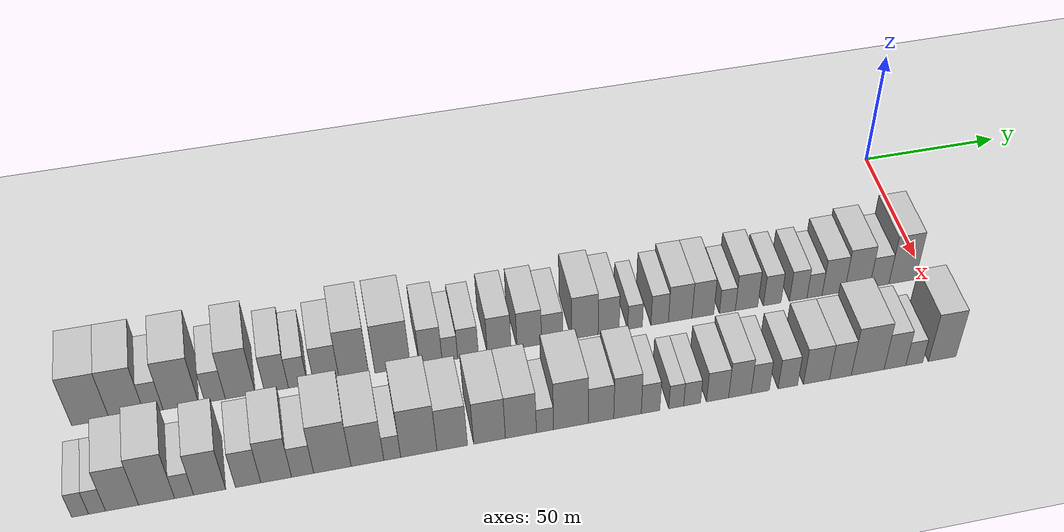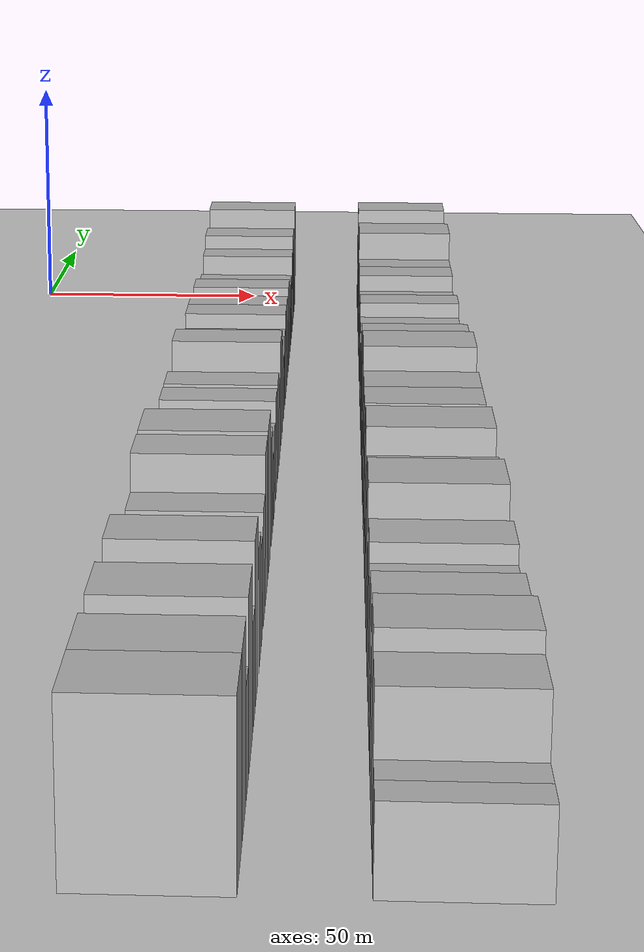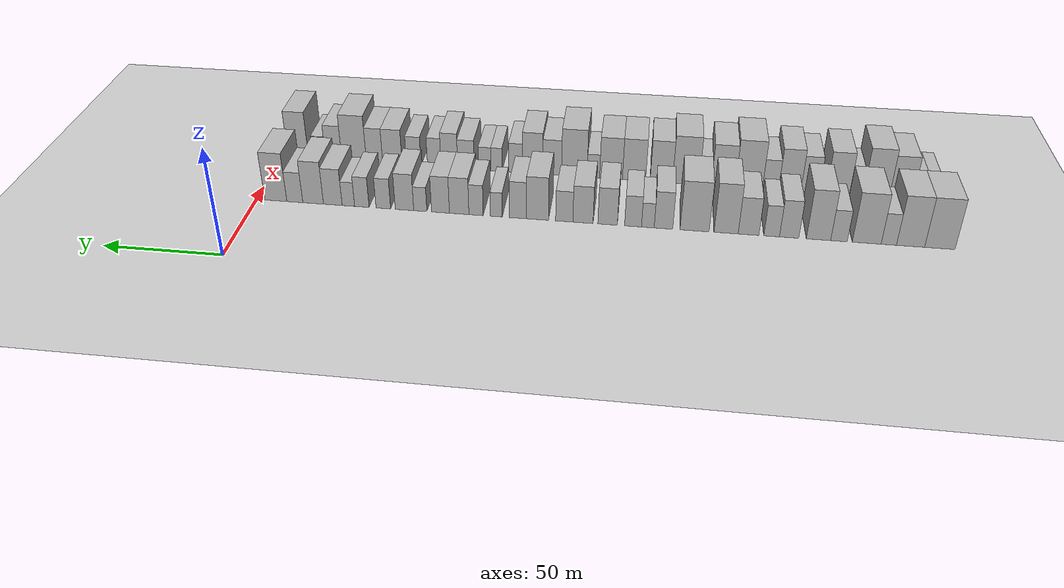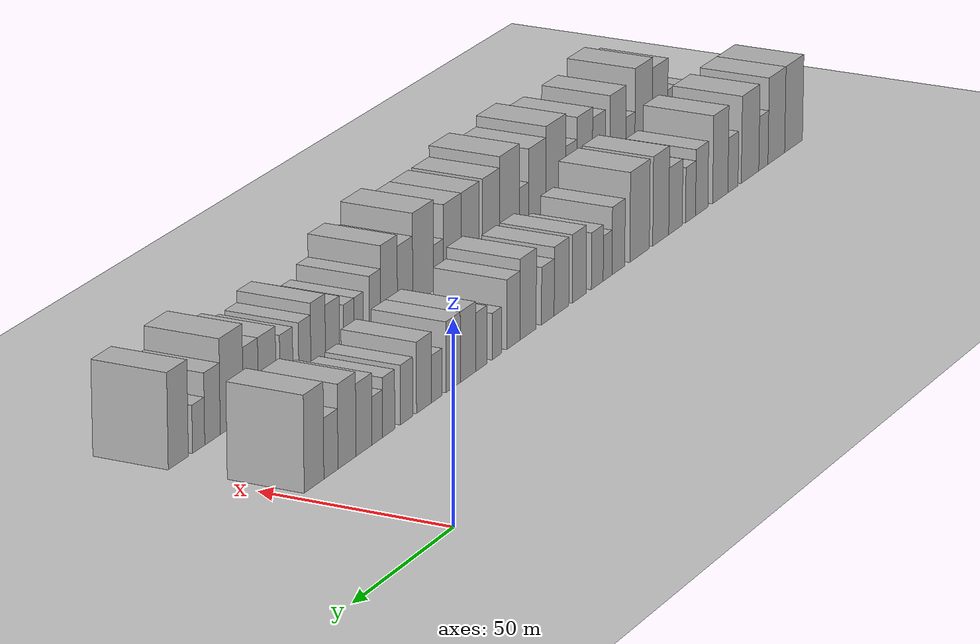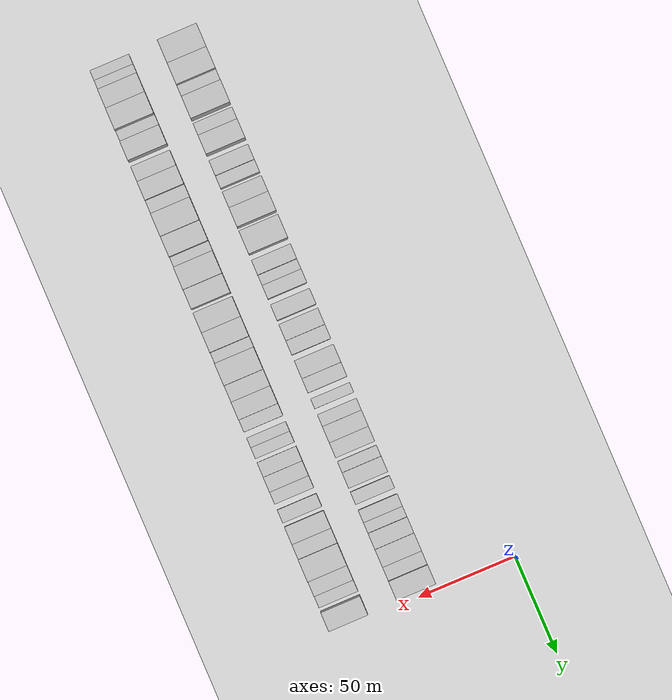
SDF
<sdf version="1.6">
 <world name="default">
  <include><name>ground_plane_1</name><uri>model://HANNAS_ground_plane</uri></include>
  <model name="building_1">
   <static>1</static>
   <pose>50.0000 -284.0708 0 0.000000 0.000000 0.000000</pose>
   <link name="link">
    <pose>0 0 12.00 0 0 0</pose>
    <collision name="collision"><geometry><box><size>20.0000 11.8585 24.0000</size></box></geometry></collision>
    <visual name="visual">
     <cast_shadows>0</cast_shadows>
     <geometry><box><size>20.0000 11.8585 24.0000</size></box></geometry>
     <material>
      <script>
       <uri>model://HANNAS_wall/materials/scripts</uri>
       <uri>model://HANNAS_wall/materials/textures</uri>
       <name>vrc/HANNAS_wall</name>
      </script>
     </material>
    </visual>
   </link>
  </model>
  <model name="building_2">
   <static>1</static>
   <pose>50.0000 -272.6437 0 0.000000 0.000000 0.000000</pose>
   <link name="link">
    <pose>0 0 12.00 0 0 0</pose>
    <collision name="collision"><geometry><box><size>20.0000 10.9956 24.0000</size></box></geometry></collision>
    <visual name="visual">
     <cast_shadows>0</cast_shadows>
     <geometry><box><size>20.0000 10.9956 24.0000</size></box></geometry>
     <material>
      <script>
       <uri>model://HANNAS_wall/materials/scripts</uri>
       <uri>model://HANNAS_wall/materials/textures</uri>
       <name>vrc/HANNAS_wall</name>
      </script>
     </material>
    </visual>
   </link>
  </model>
  <model name="building_3">
   <static>1</static>
   <pose>50.0000 -264.1438 0 0.000000 0.000000 0.000000</pose>
   <link name="link">
    <pose>0 0 7.50 0 0 0</pose>
    <collision name="collision"><geometry><box><size>20.0000 6.0041 15.0000</size></box></geometry></collision>
    <visual name="visual">
     <cast_shadows>0</cast_shadows>
     <geometry><box><size>20.0000 6.0041 15.0000</size></box></geometry>
     <material>
      <script>
       <uri>model://HANNAS_wall/materials/scripts</uri>
       <uri>model://HANNAS_wall/materials/textures</uri>
       <name>vrc/HANNAS_wall</name>
      </script>
     </material>
    </visual>
   </link>
  </model>
  <model name="building_4">
   <static>1</static>
   <pose>50.0000 -255.4517 0 0.000000 0.000000 0.000000</pose>
   <link name="link">
    <pose>0 0 12.00 0 0 0</pose>
    <collision name="collision"><geometry><box><size>20.0000 11.3802 24.0000</size></box></geometry></collision>
    <visual name="visual">
     <cast_shadows>0</cast_shadows>
     <geometry><box><size>20.0000 11.3802 24.0000</size></box></geometry>
     <material>
      <script>
       <uri>model://HANNAS_wall/materials/scripts</uri>
       <uri>model://HANNAS_wall/materials/textures</uri>
       <name>vrc/HANNAS_wall</name>
      </script>
     </material>
    </visual>
   </link>
  </model>
  <model name="building_5">
   <static>1</static>
   <pose>50.0000 -244.4778 0 0.000000 0.000000 0.000000</pose>
   <link name="link">
    <pose>0 0 7.50 0 0 0</pose>
    <collision name="collision"><geometry><box><size>20.0000 6.5676 15.0000</size></box></geometry></collision>
    <visual name="visual">
     <cast_shadows>0</cast_shadows>
     <geometry><box><size>20.0000 6.5676 15.0000</size></box></geometry>
     <material>
      <script>
       <uri>model://HANNAS_wall/materials/scripts</uri>
       <uri>model://HANNAS_wall/materials/textures</uri>
       <name>vrc/HANNAS_wall</name>
      </script>
     </material>
    </visual>
   </link>
  </model>
  <model name="building_6">
   <static>1</static>
   <pose>50.0000 -236.3527 0 0.000000 0.000000 0.000000</pose>
   <link name="link">
    <pose>0 0 12.00 0 0 0</pose>
    <collision name="collision"><geometry><box><size>20.0000 9.6825 24.0000</size></box></geometry></collision>
    <visual name="visual">
     <cast_shadows>0</cast_shadows>
     <geometry><box><size>20.0000 9.6825 24.0000</size></box></geometry>
     <material>
      <script>
       <uri>model://HANNAS_wall/materials/scripts</uri>
       <uri>model://HANNAS_wall/materials/textures</uri>
       <name>vrc/HANNAS_wall</name>
      </script>
     </material>
    </visual>
   </link>
  </model>
  <model name="building_7">
   <static>1</static>
   <pose>50.0000 -224.6390 0 0.000000 0.000000 0.000000</pose>
   <link name="link">
    <pose>0 0 9.00 0 0 0</pose>
    <collision name="collision"><geometry><box><size>20.0000 7.7450 18.0000</size></box></geometry></collision>
    <visual name="visual">
     <cast_shadows>0</cast_shadows>
     <geometry><box><size>20.0000 7.7450 18.0000</size></box></geometry>
     <material>
      <script>
       <uri>model://HANNAS_wall/materials/scripts</uri>
       <uri>model://HANNAS_wall/materials/textures</uri>
       <name>vrc/HANNAS_wall</name>
      </script>
     </material>
    </visual>
   </link>
  </model>
  <model name="building_8">
   <static>1</static>
   <pose>50.0000 -217.6239 0 0.000000 0.000000 0.000000</pose>
   <link name="link">
    <pose>0 0 7.50 0 0 0</pose>
    <collision name="collision"><geometry><box><size>20.0000 6.2851 15.0000</size></box></geometry></collision>
    <visual name="visual">
     <cast_shadows>0</cast_shadows>
     <geometry><box><size>20.0000 6.2851 15.0000</size></box></geometry>
     <material>
      <script>
       <uri>model://HANNAS_wall/materials/scripts</uri>
       <uri>model://HANNAS_wall/materials/textures</uri>
       <name>vrc/HANNAS_wall</name>
      </script>
     </material>
    </visual>
   </link>
  </model>
  <model name="building_9">
   <static>1</static>
   <pose>50.0000 -208.3122 0 0.000000 0.000000 0.000000</pose>
   <link name="link">
    <pose>0 0 9.00 0 0 0</pose>
    <collision name="collision"><geometry><box><size>20.0000 8.3385 18.0000</size></box></geometry></collision>
    <visual name="visual">
     <cast_shadows>0</cast_shadows>
     <geometry><box><size>20.0000 8.3385 18.0000</size></box></geometry>
     <material>
      <script>
       <uri>model://HANNAS_wall/materials/scripts</uri>
       <uri>model://HANNAS_wall/materials/textures</uri>
       <name>vrc/HANNAS_wall</name>
      </script>
     </material>
    </visual>
   </link>
  </model>
  <model name="building_10">
   <static>1</static>
   <pose>50.0000 -199.2481 0 0.000000 0.000000 0.000000</pose>
   <link name="link">
    <pose>0 0 12.00 0 0 0</pose>
    <collision name="collision"><geometry><box><size>20.0000 9.7897 24.0000</size></box></geometry></collision>
    <visual name="visual">
     <cast_shadows>0</cast_shadows>
     <geometry><box><size>20.0000 9.7897 24.0000</size></box></geometry>
     <material>
      <script>
       <uri>model://HANNAS_wall/materials/scripts</uri>
       <uri>model://HANNAS_wall/materials/textures</uri>
       <name>vrc/HANNAS_wall</name>
      </script>
     </material>
    </visual>
   </link>
  </model>
  <model name="building_11">
   <static>1</static>
   <pose>50.0000 -186.4286 0 0.000000 0.000000 0.000000</pose>
   <link name="link">
    <pose>0 0 12.00 0 0 0</pose>
    <collision name="collision"><geometry><box><size>20.0000 11.8492 24.0000</size></box></geometry></collision>
    <visual name="visual">
     <cast_shadows>0</cast_shadows>
     <geometry><box><size>20.0000 11.8492 24.0000</size></box></geometry>
     <material>
      <script>
       <uri>model://HANNAS_wall/materials/scripts</uri>
       <uri>model://HANNAS_wall/materials/textures</uri>
       <name>vrc/HANNAS_wall</name>
      </script>
     </material>
    </visual>
   </link>
  </model>
  <model name="building_12">
   <static>1</static>
   <pose>50.0000 -173.7091 0 0.000000 0.000000 0.000000</pose>
   <link name="link">
    <pose>0 0 9.00 0 0 0</pose>
    <collision name="collision"><geometry><box><size>20.0000 7.5898 18.0000</size></box></geometry></collision>
    <visual name="visual">
     <cast_shadows>0</cast_shadows>
     <geometry><box><size>20.0000 7.5898 18.0000</size></box></geometry>
     <material>
      <script>
       <uri>model://HANNAS_wall/materials/scripts</uri>
       <uri>model://HANNAS_wall/materials/textures</uri>
       <name>vrc/HANNAS_wall</name>
      </script>
     </material>
    </visual>
   </link>
  </model>
  <model name="building_13">
   <static>1</static>
   <pose>50.0000 -167.3021 0 0.000000 0.000000 0.000000</pose>
   <link name="link">
    <pose>0 0 6.00 0 0 0</pose>
    <collision name="collision"><geometry><box><size>20.0000 5.2240 12.0000</size></box></geometry></collision>
    <visual name="visual">
     <cast_shadows>0</cast_shadows>
     <geometry><box><size>20.0000 5.2240 12.0000</size></box></geometry>
     <material>
      <script>
       <uri>model://HANNAS_wall/materials/scripts</uri>
       <uri>model://HANNAS_wall/materials/textures</uri>
       <name>vrc/HANNAS_wall</name>
      </script>
     </material>
    </visual>
   </link>
  </model>
  <model name="building_14">
   <static>1</static>
   <pose>50.0000 -161.2082 0 0.000000 0.000000 0.000000</pose>
   <link name="link">
    <pose>0 0 7.50 0 0 0</pose>
    <collision name="collision"><geometry><box><size>20.0000 6.9639 15.0000</size></box></geometry></collision>
    <visual name="visual">
     <cast_shadows>0</cast_shadows>
     <geometry><box><size>20.0000 6.9639 15.0000</size></box></geometry>
     <material>
      <script>
       <uri>model://HANNAS_wall/materials/scripts</uri>
       <uri>model://HANNAS_wall/materials/textures</uri>
       <name>vrc/HANNAS_wall</name>
      </script>
     </material>
    </visual>
   </link>
  </model>
  <model name="building_15">
   <static>1</static>
   <pose>50.0000 -150.6885 0 0.000000 0.000000 0.000000</pose>
   <link name="link">
    <pose>0 0 9.00 0 0 0</pose>
    <collision name="collision"><geometry><box><size>20.0000 8.0754 18.0000</size></box></geometry></collision>
    <visual name="visual">
     <cast_shadows>0</cast_shadows>
     <geometry><box><size>20.0000 8.0754 18.0000</size></box></geometry>
     <material>
      <script>
       <uri>model://HANNAS_wall/materials/scripts</uri>
       <uri>model://HANNAS_wall/materials/textures</uri>
       <name>vrc/HANNAS_wall</name>
      </script>
     </material>
    </visual>
   </link>
  </model>
  <model name="building_16">
   <static>1</static>
   <pose>50.0000 -140.4494 0 0.000000 0.000000 0.000000</pose>
   <link name="link">
    <pose>0 0 9.00 0 0 0</pose>
    <collision name="collision"><geometry><box><size>20.0000 8.4030 18.0000</size></box></geometry></collision>
    <visual name="visual">
     <cast_shadows>0</cast_shadows>
     <geometry><box><size>20.0000 8.4030 18.0000</size></box></geometry>
     <material>
      <script>
       <uri>model://HANNAS_wall/materials/scripts</uri>
       <uri>model://HANNAS_wall/materials/textures</uri>
       <name>vrc/HANNAS_wall</name>
      </script>
     </material>
    </visual>
   </link>
  </model>
  <model name="building_17">
   <static>1</static>
   <pose>50.0000 -132.6413 0 0.000000 0.000000 0.000000</pose>
   <link name="link">
    <pose>0 0 7.50 0 0 0</pose>
    <collision name="collision"><geometry><box><size>20.0000 7.2131 15.0000</size></box></geometry></collision>
    <visual name="visual">
     <cast_shadows>0</cast_shadows>
     <geometry><box><size>20.0000 7.2131 15.0000</size></box></geometry>
     <material>
      <script>
       <uri>model://HANNAS_wall/materials/scripts</uri>
       <uri>model://HANNAS_wall/materials/textures</uri>
       <name>vrc/HANNAS_wall</name>
      </script>
     </material>
    </visual>
   </link>
  </model>
  <model name="building_18">
   <static>1</static>
   <pose>50.0000 -121.4385 0 0.000000 0.000000 0.000000</pose>
   <link name="link">
    <pose>0 0 10.50 0 0 0</pose>
    <collision name="collision"><geometry><box><size>20.0000 9.1925 21.0000</size></box></geometry></collision>
    <visual name="visual">
     <cast_shadows>0</cast_shadows>
     <geometry><box><size>20.0000 9.1925 21.0000</size></box></geometry>
     <material>
      <script>
       <uri>model://HANNAS_wall/materials/scripts</uri>
       <uri>model://HANNAS_wall/materials/textures</uri>
       <name>vrc/HANNAS_wall</name>
      </script>
     </material>
    </visual>
   </link>
  </model>
  <model name="building_19">
   <static>1</static>
   <pose>50.0000 -113.2091 0 0.000000 0.000000 0.000000</pose>
   <link name="link">
    <pose>0 0 9.00 0 0 0</pose>
    <collision name="collision"><geometry><box><size>20.0000 7.2663 18.0000</size></box></geometry></collision>
    <visual name="visual">
     <cast_shadows>0</cast_shadows>
     <geometry><box><size>20.0000 7.2663 18.0000</size></box></geometry>
     <material>
      <script>
       <uri>model://HANNAS_wall/materials/scripts</uri>
       <uri>model://HANNAS_wall/materials/textures</uri>
       <name>vrc/HANNAS_wall</name>
      </script>
     </material>
    </visual>
   </link>
  </model>
  <model name="building_20">
   <static>1</static>
   <pose>50.0000 -104.0275 0 0.000000 0.000000 0.000000</pose>
   <link name="link">
    <pose>0 0 6.00 0 0 0</pose>
    <collision name="collision"><geometry><box><size>20.0000 5.0969 12.0000</size></box></geometry></collision>
    <visual name="visual">
     <cast_shadows>0</cast_shadows>
     <geometry><box><size>20.0000 5.0969 12.0000</size></box></geometry>
     <material>
      <script>
       <uri>model://HANNAS_wall/materials/scripts</uri>
       <uri>model://HANNAS_wall/materials/textures</uri>
       <name>vrc/HANNAS_wall</name>
      </script>
     </material>
    </visual>
   </link>
  </model>
  <model name="building_21">
   <static>1</static>
   <pose>50.0000 -95.4334 0 0.000000 0.000000 0.000000</pose>
   <link name="link">
    <pose>0 0 7.50 0 0 0</pose>
    <collision name="collision"><geometry><box><size>20.0000 6.0914 15.0000</size></box></geometry></collision>
    <visual name="visual">
     <cast_shadows>0</cast_shadows>
     <geometry><box><size>20.0000 6.0914 15.0000</size></box></geometry>
     <material>
      <script>
       <uri>model://HANNAS_wall/materials/scripts</uri>
       <uri>model://HANNAS_wall/materials/textures</uri>
       <name>vrc/HANNAS_wall</name>
      </script>
     </material>
    </visual>
   </link>
  </model>
  <model name="building_22">
   <static>1</static>
   <pose>50.0000 -88.2341 0 0.000000 0.000000 0.000000</pose>
   <link name="link">
    <pose>0 0 9.00 0 0 0</pose>
    <collision name="collision"><geometry><box><size>20.0000 8.3072 18.0000</size></box></geometry></collision>
    <visual name="visual">
     <cast_shadows>0</cast_shadows>
     <geometry><box><size>20.0000 8.3072 18.0000</size></box></geometry>
     <material>
      <script>
       <uri>model://HANNAS_wall/materials/scripts</uri>
       <uri>model://HANNAS_wall/materials/textures</uri>
       <name>vrc/HANNAS_wall</name>
      </script>
     </material>
    </visual>
   </link>
  </model>
  <model name="building_23">
   <static>1</static>
   <pose>50.0000 -80.2416 0 0.000000 0.000000 0.000000</pose>
   <link name="link">
    <pose>0 0 9.00 0 0 0</pose>
    <collision name="collision"><geometry><box><size>20.0000 7.6779 18.0000</size></box></geometry></collision>
    <visual name="visual">
     <cast_shadows>0</cast_shadows>
     <geometry><box><size>20.0000 7.6779 18.0000</size></box></geometry>
     <material>
      <script>
       <uri>model://HANNAS_wall/materials/scripts</uri>
       <uri>model://HANNAS_wall/materials/textures</uri>
       <name>vrc/HANNAS_wall</name>
      </script>
     </material>
    </visual>
   </link>
  </model>
  <model name="building_24">
   <static>1</static>
   <pose>50.0000 -71.5768 0 0.000000 0.000000 0.000000</pose>
   <link name="link">
    <pose>0 0 6.00 0 0 0</pose>
    <collision name="collision"><geometry><box><size>20.0000 5.6516 12.0000</size></box></geometry></collision>
    <visual name="visual">
     <cast_shadows>0</cast_shadows>
     <geometry><box><size>20.0000 5.6516 12.0000</size></box></geometry>
     <material>
      <script>
       <uri>model://HANNAS_wall/materials/scripts</uri>
       <uri>model://HANNAS_wall/materials/textures</uri>
       <name>vrc/HANNAS_wall</name>
      </script>
     </material>
    </visual>
   </link>
  </model>
  <model name="building_25">
   <static>1</static>
   <pose>50.0000 -64.7696 0 0.000000 0.000000 0.000000</pose>
   <link name="link">
    <pose>0 0 9.00 0 0 0</pose>
    <collision name="collision"><geometry><box><size>20.0000 7.9629 18.0000</size></box></geometry></collision>
    <visual name="visual">
     <cast_shadows>0</cast_shadows>
     <geometry><box><size>20.0000 7.9629 18.0000</size></box></geometry>
     <material>
      <script>
       <uri>model://HANNAS_wall/materials/scripts</uri>
       <uri>model://HANNAS_wall/materials/textures</uri>
       <name>vrc/HANNAS_wall</name>
      </script>
     </material>
    </visual>
   </link>
  </model>
  <model name="building_26">
   <static>1</static>
   <pose>50.0000 -55.6162 0 0.000000 0.000000 0.000000</pose>
   <link name="link">
    <pose>0 0 7.50 0 0 0</pose>
    <collision name="collision"><geometry><box><size>20.0000 6.3438 15.0000</size></box></geometry></collision>
    <visual name="visual">
     <cast_shadows>0</cast_shadows>
     <geometry><box><size>20.0000 6.3438 15.0000</size></box></geometry>
     <material>
      <script>
       <uri>model://HANNAS_wall/materials/scripts</uri>
       <uri>model://HANNAS_wall/materials/textures</uri>
       <name>vrc/HANNAS_wall</name>
      </script>
     </material>
    </visual>
   </link>
  </model>
  <model name="building_27">
   <static>1</static>
   <pose>50.0000 -46.2891 0 0.000000 0.000000 0.000000</pose>
   <link name="link">
    <pose>0 0 7.50 0 0 0</pose>
    <collision name="collision"><geometry><box><size>20.0000 6.3104 15.0000</size></box></geometry></collision>
    <visual name="visual">
     <cast_shadows>0</cast_shadows>
     <geometry><box><size>20.0000 6.3104 15.0000</size></box></geometry>
     <material>
      <script>
       <uri>model://HANNAS_wall/materials/scripts</uri>
       <uri>model://HANNAS_wall/materials/textures</uri>
       <name>vrc/HANNAS_wall</name>
      </script>
     </material>
    </visual>
   </link>
  </model>
  <model name="building_28">
   <static>1</static>
   <pose>50.0000 -40.4163 0 0.000000 0.000000 0.000000</pose>
   <link name="link">
    <pose>0 0 6.00 0 0 0</pose>
    <collision name="collision"><geometry><box><size>20.0000 5.4352 12.0000</size></box></geometry></collision>
    <visual name="visual">
     <cast_shadows>0</cast_shadows>
     <geometry><box><size>20.0000 5.4352 12.0000</size></box></geometry>
     <material>
      <script>
       <uri>model://HANNAS_wall/materials/scripts</uri>
       <uri>model://HANNAS_wall/materials/textures</uri>
       <name>vrc/HANNAS_wall</name>
      </script>
     </material>
    </visual>
   </link>
  </model>
  <model name="building_29">
   <static>1</static>
   <pose>50.0000 -33.6156 0 0.000000 0.000000 0.000000</pose>
   <link name="link">
    <pose>0 0 9.00 0 0 0</pose>
    <collision name="collision"><geometry><box><size>20.0000 8.1662 18.0000</size></box></geometry></collision>
    <visual name="visual">
     <cast_shadows>0</cast_shadows>
     <geometry><box><size>20.0000 8.1662 18.0000</size></box></geometry>
     <material>
      <script>
       <uri>model://HANNAS_wall/materials/scripts</uri>
       <uri>model://HANNAS_wall/materials/textures</uri>
       <name>vrc/HANNAS_wall</name>
      </script>
     </material>
    </visual>
   </link>
  </model>
  <model name="building_30">
   <static>1</static>
   <pose>50.0000 -24.9792 0 0.000000 0.000000 0.000000</pose>
   <link name="link">
    <pose>0 0 10.50 0 0 0</pose>
    <collision name="collision"><geometry><box><size>20.0000 9.1068 21.0000</size></box></geometry></collision>
    <visual name="visual">
     <cast_shadows>0</cast_shadows>
     <geometry><box><size>20.0000 9.1068 21.0000</size></box></geometry>
     <material>
      <script>
       <uri>model://HANNAS_wall/materials/scripts</uri>
       <uri>model://HANNAS_wall/materials/textures</uri>
       <name>vrc/HANNAS_wall</name>
      </script>
     </material>
    </visual>
   </link>
  </model>
  <model name="building_31">
   <static>1</static>
   <pose>50.0000 -16.9064 0 0.000000 0.000000 0.000000</pose>
   <link name="link">
    <pose>0 0 7.50 0 0 0</pose>
    <collision name="collision"><geometry><box><size>20.0000 7.0388 15.0000</size></box></geometry></collision>
    <visual name="visual">
     <cast_shadows>0</cast_shadows>
     <geometry><box><size>20.0000 7.0388 15.0000</size></box></geometry>
     <material>
      <script>
       <uri>model://HANNAS_wall/materials/scripts</uri>
       <uri>model://HANNAS_wall/materials/textures</uri>
       <name>vrc/HANNAS_wall</name>
      </script>
     </material>
    </visual>
   </link>
  </model>
  <model name="building_32">
   <static>1</static>
   <pose>50.0000 -8.5030 0 0.000000 0.000000 0.000000</pose>
   <link name="link">
    <pose>0 0 12.00 0 0 0</pose>
    <collision name="collision"><geometry><box><size>20.0000 9.7680 24.0000</size></box></geometry></collision>
    <visual name="visual">
     <cast_shadows>0</cast_shadows>
     <geometry><box><size>20.0000 9.7680 24.0000</size></box></geometry>
     <material>
      <script>
       <uri>model://HANNAS_wall/materials/scripts</uri>
       <uri>model://HANNAS_wall/materials/textures</uri>
       <name>vrc/HANNAS_wall</name>
      </script>
     </material>
    </visual>
   </link>
  </model>
  <model name="building_66">
   <static>1</static>
   <pose>85.0000 -287.4740 0 0.000000 0.000000 0.000000</pose>
   <link name="link">
    <pose>0 0 6.00 0 0 0</pose>
    <collision name="collision"><geometry><box><size>20.0000 5.0519 12.0000</size></box></geometry></collision>
    <visual name="visual">
     <cast_shadows>0</cast_shadows>
     <geometry><box><size>20.0000 5.0519 12.0000</size></box></geometry>
     <material>
      <script>
       <uri>model://HANNAS_wall/materials/scripts</uri>
       <uri>model://HANNAS_wall/materials/textures</uri>
       <name>vrc/HANNAS_wall</name>
      </script>
     </material>
    </visual>
   </link>
  </model>
  <model name="building_67">
   <static>1</static>
   <pose>85.0000 -282.3990 0 0.000000 0.000000 0.000000</pose>
   <link name="link">
    <pose>0 0 6.00 0 0 0</pose>
    <collision name="collision"><geometry><box><size>20.0000 5.0981 12.0000</size></box></geometry></collision>
    <visual name="visual">
     <cast_shadows>0</cast_shadows>
     <geometry><box><size>20.0000 5.0981 12.0000</size></box></geometry>
     <material>
      <script>
       <uri>model://HANNAS_wall/materials/scripts</uri>
       <uri>model://HANNAS_wall/materials/textures</uri>
       <name>vrc/HANNAS_wall</name>
      </script>
     </material>
    </visual>
   </link>
  </model>
  <model name="building_68">
   <static>1</static>
   <pose>85.0000 -274.9027 0 0.000000 0.000000 0.000000</pose>
   <link name="link">
    <pose>0 0 10.50 0 0 0</pose>
    <collision name="collision"><geometry><box><size>20.0000 9.8946 21.0000</size></box></geometry></collision>
    <visual name="visual">
     <cast_shadows>0</cast_shadows>
     <geometry><box><size>20.0000 9.8946 21.0000</size></box></geometry>
     <material>
      <script>
       <uri>model://HANNAS_wall/materials/scripts</uri>
       <uri>model://HANNAS_wall/materials/textures</uri>
       <name>vrc/HANNAS_wall</name>
      </script>
     </material>
    </visual>
   </link>
  </model>
  <model name="building_69">
   <static>1</static>
   <pose>85.0000 -264.4699 0 0.000000 0.000000 0.000000</pose>
   <link name="link">
    <pose>0 0 12.00 0 0 0</pose>
    <collision name="collision"><geometry><box><size>20.0000 10.9711 24.0000</size></box></geometry></collision>
    <visual name="visual">
     <cast_shadows>0</cast_shadows>
     <geometry><box><size>20.0000 10.9711 24.0000</size></box></geometry>
     <material>
      <script>
       <uri>model://HANNAS_wall/materials/scripts</uri>
       <uri>model://HANNAS_wall/materials/textures</uri>
       <name>vrc/HANNAS_wall</name>
      </script>
     </material>
    </visual>
   </link>
  </model>
  <model name="building_70">
   <static>1</static>
   <pose>85.0000 -256.1071 0 0.000000 0.000000 0.000000</pose>
   <link name="link">
    <pose>0 0 6.00 0 0 0</pose>
    <collision name="collision"><geometry><box><size>20.0000 5.7543 12.0000</size></box></geometry></collision>
    <visual name="visual">
     <cast_shadows>0</cast_shadows>
     <geometry><box><size>20.0000 5.7543 12.0000</size></box></geometry>
     <material>
      <script>
       <uri>model://HANNAS_wall/materials/scripts</uri>
       <uri>model://HANNAS_wall/materials/textures</uri>
       <name>vrc/HANNAS_wall</name>
      </script>
     </material>
    </visual>
   </link>
  </model>
  <model name="building_71">
   <static>1</static>
   <pose>85.0000 -248.3174 0 0.000000 0.000000 0.000000</pose>
   <link name="link">
    <pose>0 0 10.50 0 0 0</pose>
    <collision name="collision"><geometry><box><size>20.0000 9.8251 21.0000</size></box></geometry></collision>
    <visual name="visual">
     <cast_shadows>0</cast_shadows>
     <geometry><box><size>20.0000 9.8251 21.0000</size></box></geometry>
     <material>
      <script>
       <uri>model://HANNAS_wall/materials/scripts</uri>
       <uri>model://HANNAS_wall/materials/textures</uri>
       <name>vrc/HANNAS_wall</name>
      </script>
     </material>
    </visual>
   </link>
  </model>
  <model name="building_72">
   <static>1</static>
   <pose>85.0000 -236.4807 0 0.000000 0.000000 0.000000</pose>
   <link name="link">
    <pose>0 0 9.00 0 0 0</pose>
    <collision name="collision"><geometry><box><size>20.0000 7.8484 18.0000</size></box></geometry></collision>
    <visual name="visual">
     <cast_shadows>0</cast_shadows>
     <geometry><box><size>20.0000 7.8484 18.0000</size></box></geometry>
     <material>
      <script>
       <uri>model://HANNAS_wall/materials/scripts</uri>
       <uri>model://HANNAS_wall/materials/textures</uri>
       <name>vrc/HANNAS_wall</name>
      </script>
     </material>
    </visual>
   </link>
  </model>
  <model name="building_73">
   <static>1</static>
   <pose>85.0000 -227.7977 0 0.000000 0.000000 0.000000</pose>
   <link name="link">
    <pose>0 0 10.50 0 0 0</pose>
    <collision name="collision"><geometry><box><size>20.0000 9.5175 21.0000</size></box></geometry></collision>
    <visual name="visual">
     <cast_shadows>0</cast_shadows>
     <geometry><box><size>20.0000 9.5175 21.0000</size></box></geometry>
     <material>
      <script>
       <uri>model://HANNAS_wall/materials/scripts</uri>
       <uri>model://HANNAS_wall/materials/textures</uri>
       <name>vrc/HANNAS_wall</name>
      </script>
     </material>
    </visual>
   </link>
  </model>
  <model name="building_74">
   <static>1</static>
   <pose>85.0000 -219.5942 0 0.000000 0.000000 0.000000</pose>
   <link name="link">
    <pose>0 0 7.50 0 0 0</pose>
    <collision name="collision"><geometry><box><size>20.0000 6.8896 15.0000</size></box></geometry></collision>
    <visual name="visual">
     <cast_shadows>0</cast_shadows>
     <geometry><box><size>20.0000 6.8896 15.0000</size></box></geometry>
     <material>
      <script>
       <uri>model://HANNAS_wall/materials/scripts</uri>
       <uri>model://HANNAS_wall/materials/textures</uri>
       <name>vrc/HANNAS_wall</name>
      </script>
     </material>
    </visual>
   </link>
  </model>
  <model name="building_75">
   <static>1</static>
   <pose>85.0000 -210.2942 0 0.000000 0.000000 0.000000</pose>
   <link name="link">
    <pose>0 0 12.00 0 0 0</pose>
    <collision name="collision"><geometry><box><size>20.0000 11.7105 24.0000</size></box></geometry></collision>
    <visual name="visual">
     <cast_shadows>0</cast_shadows>
     <geometry><box><size>20.0000 11.7105 24.0000</size></box></geometry>
     <material>
      <script>
       <uri>model://HANNAS_wall/materials/scripts</uri>
       <uri>model://HANNAS_wall/materials/textures</uri>
       <name>vrc/HANNAS_wall</name>
      </script>
     </material>
    </visual>
   </link>
  </model>
  <model name="building_76">
   <static>1</static>
   <pose>85.0000 -199.2622 0 0.000000 0.000000 0.000000</pose>
   <link name="link">
    <pose>0 0 10.50 0 0 0</pose>
    <collision name="collision"><geometry><box><size>20.0000 10.3534 21.0000</size></box></geometry></collision>
    <visual name="visual">
     <cast_shadows>0</cast_shadows>
     <geometry><box><size>20.0000 10.3534 21.0000</size></box></geometry>
     <material>
      <script>
       <uri>model://HANNAS_wall/materials/scripts</uri>
       <uri>model://HANNAS_wall/materials/textures</uri>
       <name>vrc/HANNAS_wall</name>
      </script>
     </material>
    </visual>
   </link>
  </model>
  <model name="building_77">
   <static>1</static>
   <pose>85.0000 -191.4281 0 0.000000 0.000000 0.000000</pose>
   <link name="link">
    <pose>0 0 6.00 0 0 0</pose>
    <collision name="collision"><geometry><box><size>20.0000 5.3148 12.0000</size></box></geometry></collision>
    <visual name="visual">
     <cast_shadows>0</cast_shadows>
     <geometry><box><size>20.0000 5.3148 12.0000</size></box></geometry>
     <material>
      <script>
       <uri>model://HANNAS_wall/materials/scripts</uri>
       <uri>model://HANNAS_wall/materials/textures</uri>
       <name>vrc/HANNAS_wall</name>
      </script>
     </material>
    </visual>
   </link>
  </model>
  <model name="building_78">
   <static>1</static>
   <pose>85.0000 -182.9917 0 0.000000 0.000000 0.000000</pose>
   <link name="link">
    <pose>0 0 12.00 0 0 0</pose>
    <collision name="collision"><geometry><box><size>20.0000 11.5580 24.0000</size></box></geometry></collision>
    <visual name="visual">
     <cast_shadows>0</cast_shadows>
     <geometry><box><size>20.0000 11.5580 24.0000</size></box></geometry>
     <material>
      <script>
       <uri>model://HANNAS_wall/materials/scripts</uri>
       <uri>model://HANNAS_wall/materials/textures</uri>
       <name>vrc/HANNAS_wall</name>
      </script>
     </material>
    </visual>
   </link>
  </model>
  <model name="building_79">
   <static>1</static>
   <pose>85.0000 -172.3226 0 0.000000 0.000000 0.000000</pose>
   <link name="link">
    <pose>0 0 10.50 0 0 0</pose>
    <collision name="collision"><geometry><box><size>20.0000 9.7802 21.0000</size></box></geometry></collision>
    <visual name="visual">
     <cast_shadows>0</cast_shadows>
     <geometry><box><size>20.0000 9.7802 21.0000</size></box></geometry>
     <material>
      <script>
       <uri>model://HANNAS_wall/materials/scripts</uri>
       <uri>model://HANNAS_wall/materials/textures</uri>
       <name>vrc/HANNAS_wall</name>
      </script>
     </material>
    </visual>
   </link>
  </model>
  <model name="building_80">
   <static>1</static>
   <pose>85.0000 -160.3249 0 0.000000 0.000000 0.000000</pose>
   <link name="link">
    <pose>0 0 10.50 0 0 0</pose>
    <collision name="collision"><geometry><box><size>20.0000 10.2150 21.0000</size></box></geometry></collision>
    <visual name="visual">
     <cast_shadows>0</cast_shadows>
     <geometry><box><size>20.0000 10.2150 21.0000</size></box></geometry>
     <material>
      <script>
       <uri>model://HANNAS_wall/materials/scripts</uri>
       <uri>model://HANNAS_wall/materials/textures</uri>
       <name>vrc/HANNAS_wall</name>
      </script>
     </material>
    </visual>
   </link>
  </model>
  <model name="building_81">
   <static>1</static>
   <pose>85.0000 -150.1748 0 0.000000 0.000000 0.000000</pose>
   <link name="link">
    <pose>0 0 10.50 0 0 0</pose>
    <collision name="collision"><geometry><box><size>20.0000 10.0852 21.0000</size></box></geometry></collision>
    <visual name="visual">
     <cast_shadows>0</cast_shadows>
     <geometry><box><size>20.0000 10.0852 21.0000</size></box></geometry>
     <material>
      <script>
       <uri>model://HANNAS_wall/materials/scripts</uri>
       <uri>model://HANNAS_wall/materials/textures</uri>
       <name>vrc/HANNAS_wall</name>
      </script>
     </material>
    </visual>
   </link>
  </model>
  <model name="building_82">
   <static>1</static>
   <pose>85.0000 -142.3384 0 0.000000 0.000000 0.000000</pose>
   <link name="link">
    <pose>0 0 6.00 0 0 0</pose>
    <collision name="collision"><geometry><box><size>20.0000 5.5875 12.0000</size></box></geometry></collision>
    <visual name="visual">
     <cast_shadows>0</cast_shadows>
     <geometry><box><size>20.0000 5.5875 12.0000</size></box></geometry>
     <material>
      <script>
       <uri>model://HANNAS_wall/materials/scripts</uri>
       <uri>model://HANNAS_wall/materials/textures</uri>
       <name>vrc/HANNAS_wall</name>
      </script>
     </material>
    </visual>
   </link>
  </model>
  <model name="building_83">
   <static>1</static>
   <pose>85.0000 -133.8512 0 0.000000 0.000000 0.000000</pose>
   <link name="link">
    <pose>0 0 12.00 0 0 0</pose>
    <collision name="collision"><geometry><box><size>20.0000 11.3870 24.0000</size></box></geometry></collision>
    <visual name="visual">
     <cast_shadows>0</cast_shadows>
     <geometry><box><size>20.0000 11.3870 24.0000</size></box></geometry>
     <material>
      <script>
       <uri>model://HANNAS_wall/materials/scripts</uri>
       <uri>model://HANNAS_wall/materials/textures</uri>
       <name>vrc/HANNAS_wall</name>
      </script>
     </material>
    </visual>
   </link>
  </model>
  <model name="building_84">
   <static>1</static>
   <pose>85.0000 -123.9764 0 0.000000 0.000000 0.000000</pose>
   <link name="link">
    <pose>0 0 9.00 0 0 0</pose>
    <collision name="collision"><geometry><box><size>20.0000 8.3626 18.0000</size></box></geometry></collision>
    <visual name="visual">
     <cast_shadows>0</cast_shadows>
     <geometry><box><size>20.0000 8.3626 18.0000</size></box></geometry>
     <material>
      <script>
       <uri>model://HANNAS_wall/materials/scripts</uri>
       <uri>model://HANNAS_wall/materials/textures</uri>
       <name>vrc/HANNAS_wall</name>
      </script>
     </material>
    </visual>
   </link>
  </model>
  <model name="building_85">
   <static>1</static>
   <pose>85.0000 -115.2366 0 0.000000 0.000000 0.000000</pose>
   <link name="link">
    <pose>0 0 10.50 0 0 0</pose>
    <collision name="collision"><geometry><box><size>20.0000 9.1172 21.0000</size></box></geometry></collision>
    <visual name="visual">
     <cast_shadows>0</cast_shadows>
     <geometry><box><size>20.0000 9.1172 21.0000</size></box></geometry>
     <material>
      <script>
       <uri>model://HANNAS_wall/materials/scripts</uri>
       <uri>model://HANNAS_wall/materials/textures</uri>
       <name>vrc/HANNAS_wall</name>
      </script>
     </material>
    </visual>
   </link>
  </model>
  <model name="building_86">
   <static>1</static>
   <pose>85.0000 -107.5850 0 0.000000 0.000000 0.000000</pose>
   <link name="link">
    <pose>0 0 7.50 0 0 0</pose>
    <collision name="collision"><geometry><box><size>20.0000 6.1859 15.0000</size></box></geometry></collision>
    <visual name="visual">
     <cast_shadows>0</cast_shadows>
     <geometry><box><size>20.0000 6.1859 15.0000</size></box></geometry>
     <material>
      <script>
       <uri>model://HANNAS_wall/materials/scripts</uri>
       <uri>model://HANNAS_wall/materials/textures</uri>
       <name>vrc/HANNAS_wall</name>
      </script>
     </material>
    </visual>
   </link>
  </model>
  <model name="building_87">
   <static>1</static>
   <pose>85.0000 -98.9969 0 0.000000 0.000000 0.000000</pose>
   <link name="link">
    <pose>0 0 6.00 0 0 0</pose>
    <collision name="collision"><geometry><box><size>20.0000 4.9904 12.0000</size></box></geometry></collision>
    <visual name="visual">
     <cast_shadows>0</cast_shadows>
     <geometry><box><size>20.0000 4.9904 12.0000</size></box></geometry>
     <material>
      <script>
       <uri>model://HANNAS_wall/materials/scripts</uri>
       <uri>model://HANNAS_wall/materials/textures</uri>
       <name>vrc/HANNAS_wall</name>
      </script>
     </material>
    </visual>
   </link>
  </model>
  <model name="building_88">
   <static>1</static>
   <pose>85.0000 -93.6664 0 0.000000 0.000000 0.000000</pose>
   <link name="link">
    <pose>0 0 6.00 0 0 0</pose>
    <collision name="collision"><geometry><box><size>20.0000 5.6708 12.0000</size></box></geometry></collision>
    <visual name="visual">
     <cast_shadows>0</cast_shadows>
     <geometry><box><size>20.0000 5.6708 12.0000</size></box></geometry>
     <material>
      <script>
       <uri>model://HANNAS_wall/materials/scripts</uri>
       <uri>model://HANNAS_wall/materials/textures</uri>
       <name>vrc/HANNAS_wall</name>
      </script>
     </material>
    </visual>
   </link>
  </model>
  <model name="building_89">
   <static>1</static>
   <pose>85.0000 -85.0905 0 0.000000 0.000000 0.000000</pose>
   <link name="link">
    <pose>0 0 7.50 0 0 0</pose>
    <collision name="collision"><geometry><box><size>20.0000 7.4809 15.0000</size></box></geometry></collision>
    <visual name="visual">
     <cast_shadows>0</cast_shadows>
     <geometry><box><size>20.0000 7.4809 15.0000</size></box></geometry>
     <material>
      <script>
       <uri>model://HANNAS_wall/materials/scripts</uri>
       <uri>model://HANNAS_wall/materials/textures</uri>
       <name>vrc/HANNAS_wall</name>
      </script>
     </material>
    </visual>
   </link>
  </model>
  <model name="building_90">
   <static>1</static>
   <pose>85.0000 -77.5555 0 0.000000 0.000000 0.000000</pose>
   <link name="link">
    <pose>0 0 9.00 0 0 0</pose>
    <collision name="collision"><geometry><box><size>20.0000 7.5891 18.0000</size></box></geometry></collision>
    <visual name="visual">
     <cast_shadows>0</cast_shadows>
     <geometry><box><size>20.0000 7.5891 18.0000</size></box></geometry>
     <material>
      <script>
       <uri>model://HANNAS_wall/materials/scripts</uri>
       <uri>model://HANNAS_wall/materials/textures</uri>
       <name>vrc/HANNAS_wall</name>
      </script>
     </material>
    </visual>
   </link>
  </model>
  <model name="building_91">
   <static>1</static>
   <pose>85.0000 -70.6607 0 0.000000 0.000000 0.000000</pose>
   <link name="link">
    <pose>0 0 7.50 0 0 0</pose>
    <collision name="collision"><geometry><box><size>20.0000 6.2005 15.0000</size></box></geometry></collision>
    <visual name="visual">
     <cast_shadows>0</cast_shadows>
     <geometry><box><size>20.0000 6.2005 15.0000</size></box></geometry>
     <material>
      <script>
       <uri>model://HANNAS_wall/materials/scripts</uri>
       <uri>model://HANNAS_wall/materials/textures</uri>
       <name>vrc/HANNAS_wall</name>
      </script>
     </material>
    </visual>
   </link>
  </model>
  <model name="building_92">
   <static>1</static>
   <pose>85.0000 -61.2219 0 0.000000 0.000000 0.000000</pose>
   <link name="link">
    <pose>0 0 7.50 0 0 0</pose>
    <collision name="collision"><geometry><box><size>20.0000 6.6770 15.0000</size></box></geometry></collision>
    <visual name="visual">
     <cast_shadows>0</cast_shadows>
     <geometry><box><size>20.0000 6.6770 15.0000</size></box></geometry>
     <material>
      <script>
       <uri>model://HANNAS_wall/materials/scripts</uri>
       <uri>model://HANNAS_wall/materials/textures</uri>
       <name>vrc/HANNAS_wall</name>
      </script>
     </material>
    </visual>
   </link>
  </model>
  <model name="building_93">
   <static>1</static>
   <pose>85.0000 -51.4000 0 0.000000 0.000000 0.000000</pose>
   <link name="link">
    <pose>0 0 9.00 0 0 0</pose>
    <collision name="collision"><geometry><box><size>20.0000 8.9669 18.0000</size></box></geometry></collision>
    <visual name="visual">
     <cast_shadows>0</cast_shadows>
     <geometry><box><size>20.0000 8.9669 18.0000</size></box></geometry>
     <material>
      <script>
       <uri>model://HANNAS_wall/materials/scripts</uri>
       <uri>model://HANNAS_wall/materials/textures</uri>
       <name>vrc/HANNAS_wall</name>
      </script>
     </material>
    </visual>
   </link>
  </model>
  <model name="building_94">
   <static>1</static>
   <pose>85.0000 -43.1450 0 0.000000 0.000000 0.000000</pose>
   <link name="link">
    <pose>0 0 9.00 0 0 0</pose>
    <collision name="collision"><geometry><box><size>20.0000 7.5430 18.0000</size></box></geometry></collision>
    <visual name="visual">
     <cast_shadows>0</cast_shadows>
     <geometry><box><size>20.0000 7.5430 18.0000</size></box></geometry>
     <material>
      <script>
       <uri>model://HANNAS_wall/materials/scripts</uri>
       <uri>model://HANNAS_wall/materials/textures</uri>
       <name>vrc/HANNAS_wall</name>
      </script>
     </material>
    </visual>
   </link>
  </model>
  <model name="building_95">
   <static>1</static>
   <pose>85.0000 -33.6827 0 0.000000 0.000000 0.000000</pose>
   <link name="link">
    <pose>0 0 12.00 0 0 0</pose>
    <collision name="collision"><geometry><box><size>20.0000 11.3816 24.0000</size></box></geometry></collision>
    <visual name="visual">
     <cast_shadows>0</cast_shadows>
     <geometry><box><size>20.0000 11.3816 24.0000</size></box></geometry>
     <material>
      <script>
       <uri>model://HANNAS_wall/materials/scripts</uri>
       <uri>model://HANNAS_wall/materials/textures</uri>
       <name>vrc/HANNAS_wall</name>
      </script>
     </material>
    </visual>
   </link>
  </model>
  <model name="building_96">
   <static>1</static>
   <pose>85.0000 -24.1817 0 0.000000 0.000000 0.000000</pose>
   <link name="link">
    <pose>0 0 9.00 0 0 0</pose>
    <collision name="collision"><geometry><box><size>20.0000 7.6204 18.0000</size></box></geometry></collision>
    <visual name="visual">
     <cast_shadows>0</cast_shadows>
     <geometry><box><size>20.0000 7.6204 18.0000</size></box></geometry>
     <material>
      <script>
       <uri>model://HANNAS_wall/materials/scripts</uri>
       <uri>model://HANNAS_wall/materials/textures</uri>
       <name>vrc/HANNAS_wall</name>
      </script>
     </material>
    </visual>
   </link>
  </model>
  <model name="building_97">
   <static>1</static>
   <pose>85.0000 -17.3939 0 0.000000 0.000000 0.000000</pose>
   <link name="link">
    <pose>0 0 6.00 0 0 0</pose>
    <collision name="collision"><geometry><box><size>20.0000 5.9552 12.0000</size></box></geometry></collision>
    <visual name="visual">
     <cast_shadows>0</cast_shadows>
     <geometry><box><size>20.0000 5.9552 12.0000</size></box></geometry>
     <material>
      <script>
       <uri>model://HANNAS_wall/materials/scripts</uri>
       <uri>model://HANNAS_wall/materials/textures</uri>
       <name>vrc/HANNAS_wall</name>
      </script>
     </material>
    </visual>
   </link>
  </model>
  <model name="building_98">
   <static>1</static>
   <pose>85.0000 -7.5739 0 0.000000 0.000000 0.000000</pose>
   <link name="link">
    <pose>0 0 12.00 0 0 0</pose>
    <collision name="collision"><geometry><box><size>20.0000 9.6848 24.0000</size></box></geometry></collision>
    <visual name="visual">
     <cast_shadows>0</cast_shadows>
     <geometry><box><size>20.0000 9.6848 24.0000</size></box></geometry>
     <material>
      <script>
       <uri>model://HANNAS_wall/materials/scripts</uri>
       <uri>model://HANNAS_wall/materials/textures</uri>
       <name>vrc/HANNAS_wall</name>
      </script>
     </material>
    </visual>
   </link>
  </model>
 </world>
</sdf>
